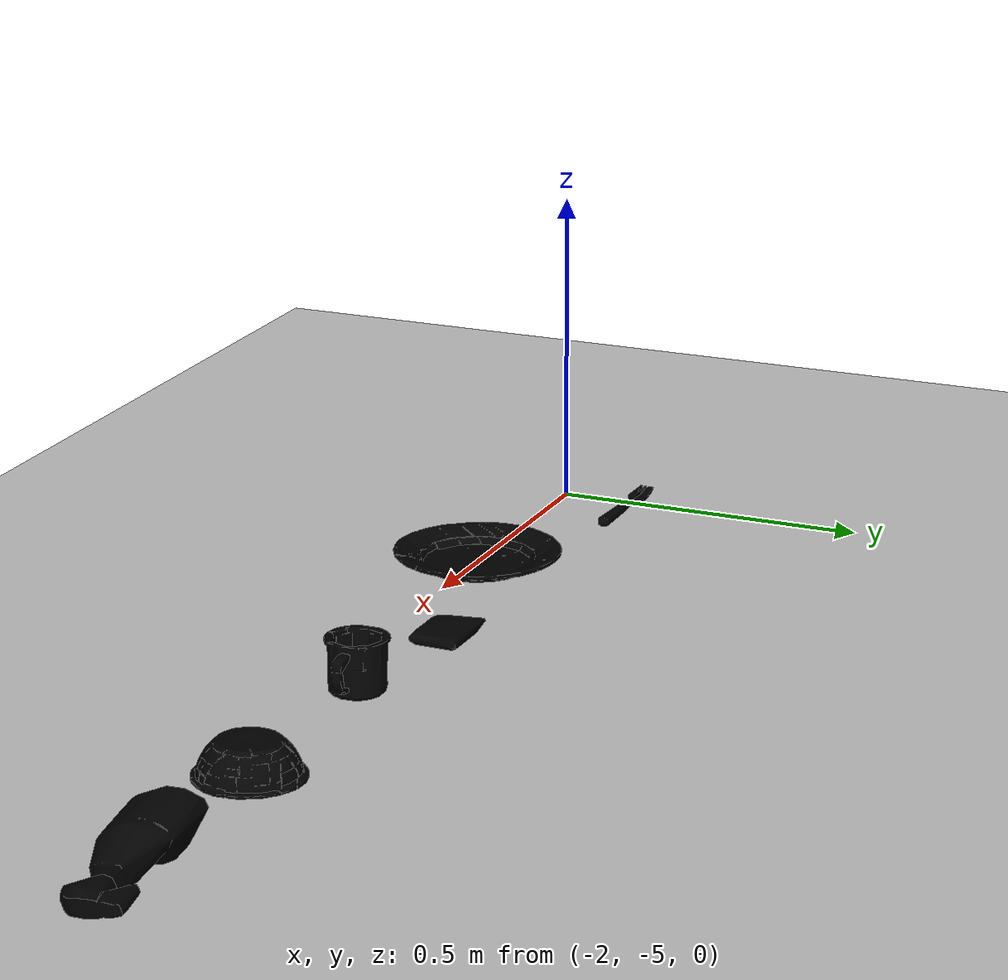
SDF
<sdf version="1.7">
 <world name="default">
  <model name="ground_plane">
   <static>1</static>
   <link name="link">
    <collision name="collision">
     <geometry><plane><normal>0 0 1</normal><size>100 100</size></plane></geometry>
     <surface><friction><ode><mu>100</mu><mu2>50</mu2></ode></friction></surface>
    </collision>
    <visual name="visual">
     <cast_shadows>0</cast_shadows>
     <geometry><plane><normal>0 0 1</normal><size>100 100</size></plane></geometry>
     <material>
      <script><uri>file://media/materials/scripts/gazebo.material</uri><name>Gazebo/Grey</name></script>
     </material>
    </visual>
   </link>
  </model>
  <model name="030_fork_textured_0">
   <pose>-1.93111 -4.8822 0.007633 -0.118583 -0.016406 0.006368</pose>
   <link name="body">
    <inertial>
     <mass>1</mass>
     <inertia>
      <ixx>3.34472e-05</ixx>
      <ixy>0</ixy>
      <ixz>0</ixz>
      <iyy>0.00239393</iyy>
      <iyz>0</iyz>
      <izz>0.00240903</izz>
     </inertia>
    </inertial>
    <visual name="visual">
     <geometry><mesh><uri>model://030_fork_textured/textured.dae</uri></mesh></geometry>
     <pose>-0.008612 -0.022177 0.003868 -3.01703 -0.013342 -0.002714</pose>
    </visual>
    <collision name="collision">
     <geometry><mesh><uri>model://030_fork_textured/textured.col.dae</uri></mesh></geometry>
     <surface>
      <friction><ode><mu>0.8</mu><mu2>0.8</mu2><slip1>0</slip1><slip2>0</slip2></ode></friction>
      <contact><ode><kp>1e+06</kp><kd>1</kd><max_vel>0</max_vel></ode></contact>
     </surface>
     <pose>-0.008612 -0.022177 0.003868 -3.01703 -0.013342 -0.002714</pose>
    </collision>
   </link>
  </model>
  <model name="029_plate_textured_0">
   <pose>-1.62303 -4.99411 0.012789 0.004631 -0.008142 0.001601</pose>
   <link name="body">
    <inertial>
     <mass>1</mass>
     <inertia>
      <ixx>0.00456304</ixx>
      <ixy>0</ixy>
      <ixz>0</ixz>
      <iyy>0.004599</iyy>
      <iyz>0</iyz>
      <izz>0.00898484</izz>
     </inertia>
    </inertial>
    <visual name="visual">
     <geometry><mesh><uri>model://029_plate_textured/textured.dae</uri></mesh></geometry>
     <pose>0.008295 -0.005671 -0.008893 -0.007805 0.005192 -0.468209</pose>
    </visual>
    <collision name="collision">
     <geometry><mesh><uri>model://029_plate_textured/textured.col.dae</uri></mesh></geometry>
     <surface>
      <friction><ode><mu>0.8</mu><mu2>0.8</mu2><slip1>0</slip1><slip2>0</slip2></ode></friction>
      <contact><ode><kp>1e+06</kp><kd>1</kd><max_vel>0</max_vel></ode></contact>
     </surface>
     <pose>0.008295 -0.005671 -0.008893 -0.007805 0.005192 -0.468209</pose>
    </collision>
   </link>
  </model>
  <model name="026_sponge_textured_0">
   <pose>-1.3064 -4.90655 0.009838 -0.002931 -0.00182 -0.000289</pose>
   <link name="body">
    <inertial>
     <mass>1</mass>
     <inertia>
      <ixx>0.000435453</ixx>
      <ixy>0</ixy>
      <ixz>0</ixz>
      <iyy>0.000883052</iyy>
      <iyz>0</iyz>
      <izz>0.0012779</izz>
     </inertia>
    </inertial>
    <visual name="visual">
     <geometry><mesh><uri>model://026_sponge_textured/textured.dae</uri></mesh></geometry>
     <pose>0.011448 -0.01582 0.009499 3.13153 -0.015433 -1.58139</pose>
    </visual>
    <collision name="collision">
     <geometry><mesh><uri>model://026_sponge_textured/textured.col.dae</uri></mesh></geometry>
     <surface>
      <friction><ode><mu>0.8</mu><mu2>0.8</mu2><slip1>0</slip1><slip2>0</slip2></ode></friction>
      <contact><ode><kp>1e+06</kp><kd>1</kd><max_vel>0</max_vel></ode></contact>
     </surface>
     <pose>0.011448 -0.01582 0.009499 3.13153 -0.015433 -1.58139</pose>
    </collision>
   </link>
  </model>
  <model name="025_mug_textured_0">
   <pose>-1.05489 -4.9344 0.028348 0.081345 -0.061368 -0.000654</pose>
   <link name="body">
    <inertial>
     <mass>1</mass>
     <inertia>
      <ixx>0.000860082</ixx>
      <ixy>0</ixy>
      <ixz>0</ixz>
      <iyy>0.000977917</iyy>
      <iyz>0</iyz>
      <izz>0.00125152</izz>
     </inertia>
    </inertial>
    <visual name="visual">
     <geometry><mesh><uri>model://025_mug_textured/textured.dae</uri></mesh></geometry>
     <pose>0.017736 -0.018134 -0.026654 -0.079307 0.06392 0.029619</pose>
    </visual>
    <collision name="collision">
     <geometry><mesh><uri>model://025_mug_textured/textured.col.dae</uri></mesh></geometry>
     <surface>
      <friction><ode><mu>0.8</mu><mu2>0.8</mu2><slip1>0</slip1><slip2>0</slip2></ode></friction>
      <contact><ode><kp>1e+06</kp><kd>1</kd><max_vel>0</max_vel></ode></contact>
     </surface>
     <pose>0.017736 -0.018134 -0.026654 -0.079307 0.06392 0.029619</pose>
    </collision>
   </link>
  </model>
  <model name="024_bowl_textured_0">
   <pose>-0.707127 -4.93092 0.028014 0.003863 -0.010752 0.009103</pose>
   <link name="body">
    <inertial>
     <mass>1</mass>
     <inertia>
      <ixx>0.00228433</ixx>
      <ixy>0</ixy>
      <ixz>0</ixz>
      <iyy>0.00237419</iyy>
      <iyz>0</iyz>
      <izz>0.00393079</izz>
     </inertia>
    </inertial>
    <visual name="visual">
     <geometry><mesh><uri>model://024_bowl_textured/textured.dae</uri></mesh></geometry>
     <pose>0.034033 0.03448 0.025778 -3.12012 0.000481 2.06348</pose>
    </visual>
    <collision name="collision">
     <geometry><mesh><uri>model://024_bowl_textured/textured.col.dae</uri></mesh></geometry>
     <surface>
      <friction><ode><mu>0.8</mu><mu2>0.8</mu2><slip1>0</slip1><slip2>0</slip2></ode></friction>
      <contact><ode><kp>1e+06</kp><kd>1</kd><max_vel>0</max_vel></ode></contact>
     </surface>
     <pose>0.034033 0.03448 0.025778 -3.12012 0.000481 2.06348</pose>
    </collision>
   </link>
  </model>
  <model name="022_windex_bottle_textured_0">
   <pose>-0.360414 -4.91324 0.041939 0.062575 0.116121 0.013133</pose>
   <link name="body">
    <inertial>
     <mass>1</mass>
     <inertia>
      <ixx>0.000713313</ixx>
      <ixy>0</ixy>
      <ixz>0</ixz>
      <iyy>0.00474397</iyy>
      <iyz>0</iyz>
      <izz>0.0048943</izz>
     </inertia>
    </inertial>
    <visual name="visual">
     <geometry><mesh><uri>model://022_windex_bottle_textured/textured.dae</uri></mesh></geometry>
     <pose>-0.102088 -0.014744 0.010268 1.55471 1.26541 1.58003</pose>
    </visual>
    <collision name="collision">
     <geometry><mesh><uri>model://022_windex_bottle_textured/textured.col.dae</uri></mesh></geometry>
     <surface>
      <friction><ode><mu>0.8</mu><mu2>0.8</mu2><slip1>0</slip1><slip2>0</slip2></ode></friction>
      <contact><ode><kp>1e+06</kp><kd>1</kd><max_vel>0</max_vel></ode></contact>
     </surface>
     <pose>-0.102088 -0.014744 0.010268 1.55471 1.26541 1.58003</pose>
    </collision>
   </link>
  </model>
 </world>
</sdf>
